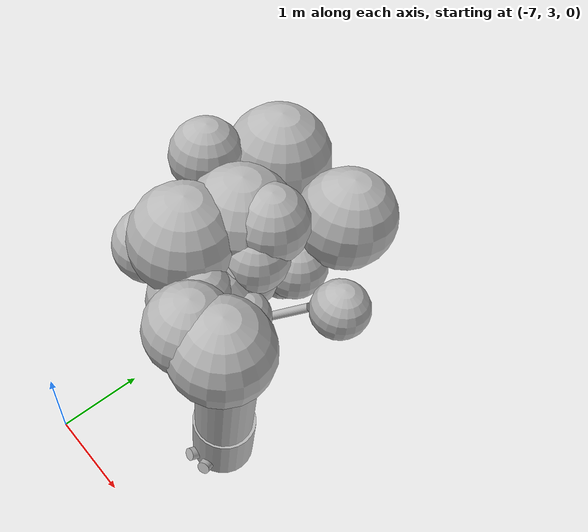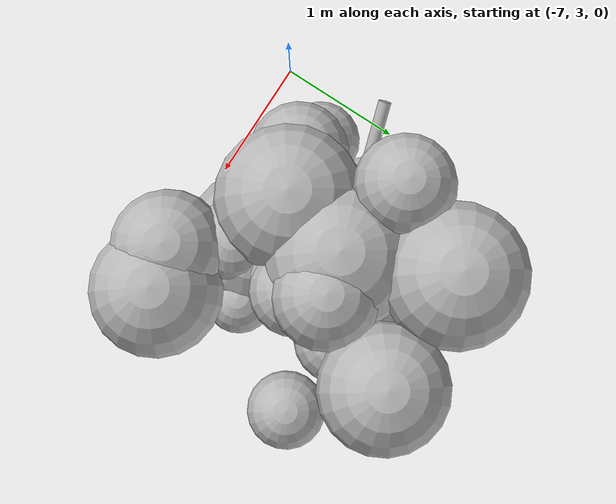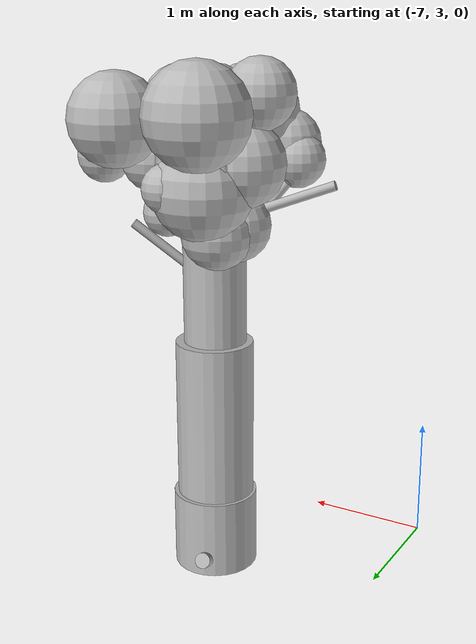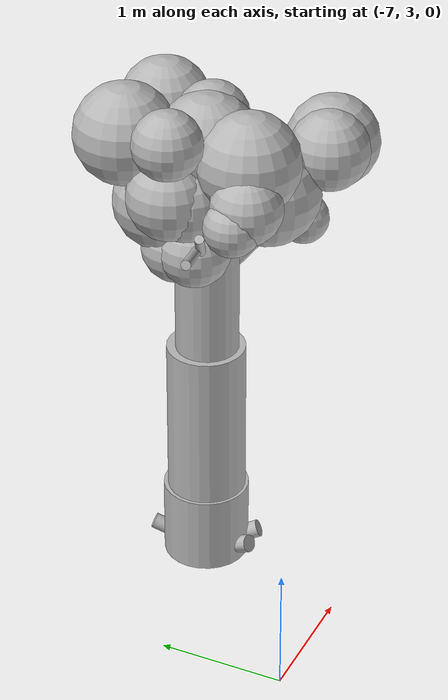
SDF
<sdf version="1.6">
 <world name="default">
  <model name="tree_4">
   <static>true</static>
   <pose>-5.6490 4.2730 0 0 0 0</pose>
   <link name="trunk">
    <pose>0 0 1.5000 0 0 0</pose>
    <collision name="trunk_c">
     <geometry><cylinder><radius>0.3500</radius><length>3.0000</length></cylinder></geometry>
    </collision>
   </link>
   <link name="trunk_v0">
    <pose>-0.0003 -0.0010 0.3100 0 0 0</pose>
    <visual name="trunk_v0_v">
     <geometry><cylinder><radius>0.3448</radius><length>0.6448</length></cylinder></geometry>
     <material>
      <script>
       <uri>model://bushfire/materials/scripts</uri>
       <uri>model://bushfire/materials/textures</uri>
       <name>Bushfire/CharBark</name>
      </script>
     </material>
    </visual>
   </link>
   <link name="trunk_v1">
    <pose>-0.0018 -0.0072 1.2700 0 0 0</pose>
    <visual name="trunk_v1_v">
     <geometry><cylinder><radius>0.3150</radius><length>1.3520</length></cylinder></geometry>
     <material>
      <script>
       <uri>model://bushfire/materials/scripts</uri>
       <uri>model://bushfire/materials/textures</uri>
       <name>Bushfire/BarkStringy</name>
      </script>
     </material>
    </visual>
   </link>
   <link name="trunk_v2">
    <pose>-0.0046 -0.0183 2.4600 0 0 0</pose>
    <visual name="trunk_v2_v">
     <geometry><cylinder><radius>0.2520</radius><length>1.1232</length></cylinder></geometry>
     <material>
      <script>
       <uri>model://bushfire/materials/scripts</uri>
       <uri>model://bushfire/materials/textures</uri>
       <name>Bushfire/BarkStringy</name>
      </script>
     </material>
    </visual>
   </link>
   <link name="root0">
    <pose>-0.0448 -0.2358 0.09 0 1.150 4.525</pose>
    <visual name="root0_v">
     <geometry><cylinder><radius>0.0700</radius><length>0.4200</length></cylinder></geometry>
     <material>
      <script>
       <uri>model://bushfire/materials/scripts</uri>
       <uri>model://bushfire/materials/textures</uri>
       <name>Bushfire/CharBark</name>
      </script>
     </material>
    </visual>
   </link>
   <link name="root1">
    <pose>-0.0676 0.2303 0.09 0 1.150 1.856</pose>
    <visual name="root1_v">
     <geometry><cylinder><radius>0.0632</radius><length>0.4200</length></cylinder></geometry>
     <material>
      <script>
       <uri>model://bushfire/materials/scripts</uri>
       <uri>model://bushfire/materials/textures</uri>
       <name>Bushfire/CharBark</name>
      </script>
     </material>
    </visual>
   </link>
   <link name="root2">
    <pose>0.0795 -0.2265 0.09 0 1.150 5.050</pose>
    <visual name="root2_v">
     <geometry><cylinder><radius>0.0707</radius><length>0.4200</length></cylinder></geometry>
     <material>
      <script>
       <uri>model://bushfire/materials/scripts</uri>
       <uri>model://bushfire/materials/textures</uri>
       <name>Bushfire/CharBark</name>
      </script>
     </material>
    </visual>
   </link>
   <link name="branch0">
    <pose>-0.2717 -0.1070 2.8913 0 0.6873 3.5168</pose>
    <visual name="branch0_v">
     <geometry><cylinder><radius>0.0369</radius><length>0.9207</length></cylinder></geometry>
     <material>
      <script>
       <uri>model://bushfire/materials/scripts</uri>
       <uri>model://bushfire/materials/textures</uri>
       <name>Bushfire/BarkStringy</name>
      </script>
     </material>
    </visual>
   </link>
   <link name="branch1">
    <pose>0.2083 -0.2668 2.7689 0 0.8006 5.3752</pose>
    <visual name="branch1_v">
     <geometry><cylinder><radius>0.0432</radius><length>0.9432</length></cylinder></geometry>
     <material>
      <script>
       <uri>model://bushfire/materials/scripts</uri>
       <uri>model://bushfire/materials/textures</uri>
       <name>Bushfire/BarkStringy</name>
      </script>
     </material>
    </visual>
   </link>
   <link name="branch2">
    <pose>0.2532 0.1682 2.6725 0 0.8785 6.8696</pose>
    <visual name="branch2_v">
     <geometry><cylinder><radius>0.0363</radius><length>0.7899</length></cylinder></geometry>
     <material>
      <script>
       <uri>model://bushfire/materials/scripts</uri>
       <uri>model://bushfire/materials/textures</uri>
       <name>Bushfire/BarkStringy</name>
      </script>
     </material>
    </visual>
   </link>
   <link name="branch3">
    <pose>-0.1396 0.1419 2.7050 0 0.6430 8.6311</pose>
    <visual name="branch3_v">
     <geometry><cylinder><radius>0.0361</radius><length>0.6641</length></cylinder></geometry>
     <material>
      <script>
       <uri>model://bushfire/materials/scripts</uri>
       <uri>model://bushfire/materials/textures</uri>
       <name>Bushfire/BarkStringy</name>
      </script>
     </material>
    </visual>
   </link>
   <link name="spar">
    <pose>-0.4010 -0.1250 3.0500 0 1.2208 3.4438</pose>
    <visual name="spar_v">
     <geometry><cylinder><radius>0.0380</radius><length>1.1500</length></cylinder></geometry>
     <material>
      <script>
       <uri>model://bushfire/materials/scripts</uri>
       <uri>model://bushfire/materials/textures</uri>
       <name>Bushfire/CharBark</name>
      </script>
     </material>
    </visual>
   </link>
   <link name="foliage0">
    <pose>0.0198 -0.0159 3.7271 0 0 0</pose>
    <visual name="foliage0_v">
     <geometry><sphere><radius>0.4094</radius></sphere></geometry>
     <material>
      <script>
       <uri>model://bushfire/materials/scripts</uri>
       <uri>model://bushfire/materials/textures</uri>
       <name>Bushfire/Foliage0</name>
      </script>
     </material>
    </visual>
   </link>
   <link name="foliage1">
    <pose>0.4694 -0.8191 3.6409 0 0 0</pose>
    <visual name="foliage1_v">
     <geometry><sphere><radius>0.3174</radius></sphere></geometry>
     <material>
      <script>
       <uri>model://bushfire/materials/scripts</uri>
       <uri>model://bushfire/materials/textures</uri>
       <name>Bushfire/Foliage1</name>
      </script>
     </material>
    </visual>
   </link>
   <link name="foliage2">
    <pose>0.2961 -0.1141 3.6613 0 0 0</pose>
    <visual name="foliage2_v">
     <geometry><sphere><radius>0.2499</radius></sphere></geometry>
     <material>
      <script>
       <uri>model://bushfire/materials/scripts</uri>
       <uri>model://bushfire/materials/textures</uri>
       <name>Bushfire/Foliage2</name>
      </script>
     </material>
    </visual>
   </link>
   <link name="foliage3">
    <pose>-0.2422 0.5675 3.6571 0 0 0</pose>
    <visual name="foliage3_v">
     <geometry><sphere><radius>0.2199</radius></sphere></geometry>
     <material>
      <script>
       <uri>model://bushfire/materials/scripts</uri>
       <uri>model://bushfire/materials/textures</uri>
       <name>Bushfire/Foliage0</name>
      </script>
     </material>
    </visual>
   </link>
   <link name="foliage4">
    <pose>-0.2766 0.0229 3.3786 0 0 0</pose>
    <visual name="foliage4_v">
     <geometry><sphere><radius>0.3153</radius></sphere></geometry>
     <material>
      <script>
       <uri>model://bushfire/materials/scripts</uri>
       <uri>model://bushfire/materials/textures</uri>
       <name>Bushfire/Foliage2</name>
      </script>
     </material>
    </visual>
   </link>
   <link name="foliage5">
    <pose>0.2408 -0.5458 3.5721 0 0 0</pose>
    <visual name="foliage5_v">
     <geometry><sphere><radius>0.2319</radius></sphere></geometry>
     <material>
      <script>
       <uri>model://bushfire/materials/scripts</uri>
       <uri>model://bushfire/materials/textures</uri>
       <name>Bushfire/Foliage1</name>
      </script>
     </material>
    </visual>
   </link>
   <link name="foliage6">
    <pose>0.0793 0.5071 3.2599 0 0 0</pose>
    <visual name="foliage6_v">
     <geometry><sphere><radius>0.1889</radius></sphere></geometry>
     <material>
      <script>
       <uri>model://bushfire/materials/scripts</uri>
       <uri>model://bushfire/materials/textures</uri>
       <name>Bushfire/Foliage0</name>
      </script>
     </material>
    </visual>
   </link>
   <link name="foliage7">
    <pose>-0.0968 0.2471 3.3646 0 0 0</pose>
    <visual name="foliage7_v">
     <geometry><sphere><radius>0.3812</radius></sphere></geometry>
     <material>
      <script>
       <uri>model://bushfire/materials/scripts</uri>
       <uri>model://bushfire/materials/textures</uri>
       <name>Bushfire/Foliage2</name>
      </script>
     </material>
    </visual>
   </link>
   <link name="foliage8">
    <pose>-0.0999 -0.4100 3.7101 0 0 0</pose>
    <visual name="foliage8_v">
     <geometry><sphere><radius>0.4070</radius></sphere></geometry>
     <material>
      <script>
       <uri>model://bushfire/materials/scripts</uri>
       <uri>model://bushfire/materials/textures</uri>
       <name>Bushfire/Foliage2</name>
      </script>
     </material>
    </visual>
   </link>
   <link name="foliage9">
    <pose>0.4960 -0.3581 3.4081 0 0 0</pose>
    <visual name="foliage9_v">
     <geometry><sphere><radius>0.1892</radius></sphere></geometry>
     <material>
      <script>
       <uri>model://bushfire/materials/scripts</uri>
       <uri>model://bushfire/materials/textures</uri>
       <name>Bushfire/Foliage2</name>
      </script>
     </material>
    </visual>
   </link>
   <link name="foliage10">
    <pose>0.3869 0.2196 3.4086 0 0 0</pose>
    <visual name="foliage10_v">
     <geometry><sphere><radius>0.2430</radius></sphere></geometry>
     <material>
      <script>
       <uri>model://bushfire/materials/scripts</uri>
       <uri>model://bushfire/materials/textures</uri>
       <name>Bushfire/Foliage0</name>
      </script>
     </material>
    </visual>
   </link>
   <link name="foliage11">
    <pose>-0.2408 0.1698 3.3574 0 0 0</pose>
    <visual name="foliage11_v">
     <geometry><sphere><radius>0.2388</radius></sphere></geometry>
     <material>
      <script>
       <uri>model://bushfire/materials/scripts</uri>
       <uri>model://bushfire/materials/textures</uri>
       <name>Bushfire/Foliage2</name>
      </script>
     </material>
    </visual>
   </link>
   <link name="foliage12">
    <pose>-0.3719 -0.5216 3.4934 0 0 0</pose>
    <visual name="foliage12_v">
     <geometry><sphere><radius>0.2803</radius></sphere></geometry>
     <material>
      <script>
       <uri>model://bushfire/materials/scripts</uri>
       <uri>model://bushfire/materials/textures</uri>
       <name>Bushfire/Foliage0</name>
      </script>
     </material>
    </visual>
   </link>
   <link name="foliage13">
    <pose>0.7001 -0.7512 3.5940 0 0 0</pose>
    <visual name="foliage13_v">
     <geometry><sphere><radius>0.3683</radius></sphere></geometry>
     <material>
      <script>
       <uri>model://bushfire/materials/scripts</uri>
       <uri>model://bushfire/materials/textures</uri>
       <name>Bushfire/Foliage0</name>
      </script>
     </material>
    </visual>
   </link>
   <link name="foliage14">
    <pose>0.2006 0.3200 3.0396 0 0 0</pose>
    <visual name="foliage14_v">
     <geometry><sphere><radius>0.1855</radius></sphere></geometry>
     <material>
      <script>
       <uri>model://bushfire/materials/scripts</uri>
       <uri>model://bushfire/materials/textures</uri>
       <name>Bushfire/Foliage2</name>
      </script>
     </material>
    </visual>
   </link>
   <link name="foliage15">
    <pose>-0.1994 -0.0086 2.9118 0 0 0</pose>
    <visual name="foliage15_v">
     <geometry><sphere><radius>0.2838</radius></sphere></geometry>
     <material>
      <script>
       <uri>model://bushfire/materials/scripts</uri>
       <uri>model://bushfire/materials/textures</uri>
       <name>Bushfire/Foliage0</name>
      </script>
     </material>
    </visual>
   </link>
   <link name="foliage16">
    <pose>-0.3491 0.1281 3.4205 0 0 0</pose>
    <visual name="foliage16_v">
     <geometry><sphere><radius>0.3318</radius></sphere></geometry>
     <material>
      <script>
       <uri>model://bushfire/materials/scripts</uri>
       <uri>model://bushfire/materials/textures</uri>
       <name>Bushfire/Foliage0</name>
      </script>
     </material>
    </visual>
   </link>
   <link name="foliage17">
    <pose>0.1594 -0.4554 3.3431 0 0 0</pose>
    <visual name="foliage17_v">
     <geometry><sphere><radius>0.4135</radius></sphere></geometry>
     <material>
      <script>
       <uri>model://bushfire/materials/scripts</uri>
       <uri>model://bushfire/materials/textures</uri>
       <name>Bushfire/Foliage1</name>
      </script>
     </material>
    </visual>
   </link>
   <link name="foliage18">
    <pose>0.8660 0.1926 3.4049 0 0 0</pose>
    <visual name="foliage18_v">
     <geometry><sphere><radius>0.2164</radius></sphere></geometry>
     <material>
      <script>
       <uri>model://bushfire/materials/scripts</uri>
       <uri>model://bushfire/materials/textures</uri>
       <name>Bushfire/Foliage0</name>
      </script>
     </material>
    </visual>
   </link>
   <link name="foliage19">
    <pose>-0.2230 0.5535 3.8100 0 0 0</pose>
    <visual name="foliage19_v">
     <geometry><sphere><radius>0.4012</radius></sphere></geometry>
     <material>
      <script>
       <uri>model://bushfire/materials/scripts</uri>
       <uri>model://bushfire/materials/textures</uri>
       <name>Bushfire/Foliage0</name>
      </script>
     </material>
    </visual>
   </link>
   <link name="foliage20">
    <pose>-0.4685 0.0775 3.9353 0 0 0</pose>
    <visual name="foliage20_v">
     <geometry><sphere><radius>0.2727</radius></sphere></geometry>
     <material>
      <script>
       <uri>model://bushfire/materials/scripts</uri>
       <uri>model://bushfire/materials/textures</uri>
       <name>Bushfire/Foliage0</name>
      </script>
     </material>
    </visual>
   </link>
   <link name="foliage21">
    <pose>0.1152 -0.1690 3.4662 0 0 0</pose>
    <visual name="foliage21_v">
     <geometry><sphere><radius>0.3807</radius></sphere></geometry>
     <material>
      <script>
       <uri>model://bushfire/materials/scripts</uri>
       <uri>model://bushfire/materials/textures</uri>
       <name>Bushfire/Foliage1</name>
      </script>
     </material>
    </visual>
   </link>
   <link name="foliage22">
    <pose>0.2393 0.0434 3.8375 0 0 0</pose>
    <visual name="foliage22_v">
     <geometry><sphere><radius>0.2896</radius></sphere></geometry>
     <material>
      <script>
       <uri>model://bushfire/materials/scripts</uri>
       <uri>model://bushfire/materials/textures</uri>
       <name>Bushfire/Foliage2</name>
      </script>
     </material>
    </visual>
   </link>
   <link name="foliage23">
    <pose>-0.1449 0.1659 2.8807 0 0 0</pose>
    <visual name="foliage23_v">
     <geometry><sphere><radius>0.2825</radius></sphere></geometry>
     <material>
      <script>
       <uri>model://bushfire/materials/scripts</uri>
       <uri>model://bushfire/materials/textures</uri>
       <name>Bushfire/Foliage1</name>
      </script>
     </material>
    </visual>
   </link>
   <link name="foliage24">
    <pose>-0.5026 -0.4649 3.3852 0 0 0</pose>
    <visual name="foliage24_v">
     <geometry><sphere><radius>0.2219</radius></sphere></geometry>
     <material>
      <script>
       <uri>model://bushfire/materials/scripts</uri>
       <uri>model://bushfire/materials/textures</uri>
       <name>Bushfire/Foliage1</name>
      </script>
     </material>
    </visual>
   </link>
   <link name="foliage25">
    <pose>0.4422 -0.6284 3.0179 0 0 0</pose>
    <visual name="foliage25_v">
     <geometry><sphere><radius>0.2019</radius></sphere></geometry>
     <material>
      <script>
       <uri>model://bushfire/materials/scripts</uri>
       <uri>model://bushfire/materials/textures</uri>
       <name>Bushfire/Foliage2</name>
      </script>
     </material>
    </visual>
   </link>
   <link name="foliage26">
    <pose>0.4786 0.5620 3.7461 0 0 0</pose>
    <visual name="foliage26_v">
     <geometry><sphere><radius>0.3601</radius></sphere></geometry>
     <material>
      <script>
       <uri>model://bushfire/materials/scripts</uri>
       <uri>model://bushfire/materials/textures</uri>
       <name>Bushfire/Foliage0</name>
      </script>
     </material>
    </visual>
   </link>
   <link name="foliage27">
    <pose>-0.1007 0.3025 3.2349 0 0 0</pose>
    <visual name="foliage27_v">
     <geometry><sphere><radius>0.3936</radius></sphere></geometry>
     <material>
      <script>
       <uri>model://bushfire/materials/scripts</uri>
       <uri>model://bushfire/materials/textures</uri>
       <name>Bushfire/Foliage1</name>
      </script>
     </material>
    </visual>
   </link>
  </model>
 </world>
</sdf>
